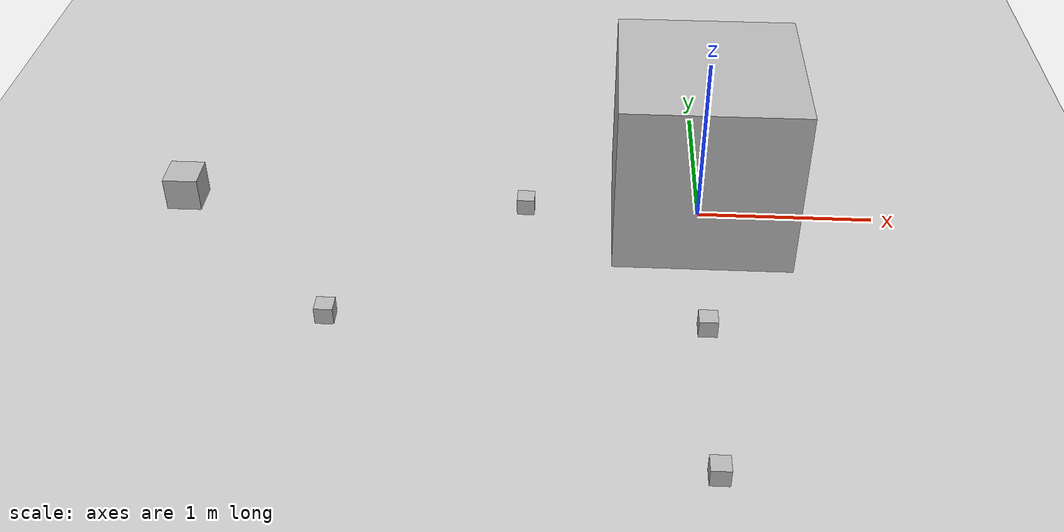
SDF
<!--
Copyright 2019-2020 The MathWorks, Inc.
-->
<sdf version="1.4">
 <world name="default">
  <include><uri>model://ground_plane</uri></include>
  <include><uri>model://sun</uri></include>
  <model name="unit_box">
   <pose>0.0 0.0 0.5 0.0 0.0 0.0</pose>
   <link name="link">
    <collision name="collision"><geometry><box><size>1 1 1</size></box></geometry></collision>
    <visual name="visual"><geometry><box><size>1 1 1</size></box></geometry></visual>
   </link>
   <joint type="revolute" name="joint">
    <child>link</child>
    <parent>link</parent>
    <axis><xyz>0 0 0</xyz></axis>
   </joint>
  </model>
  <model name="camera0">
   <pose>0 1 0.05 0 0 0</pose>
   <link name="link">
    <inertial>
     <mass>0.1</mass>
     <inertia><ixx>0.000166667</ixx><iyy>0.000166667</iyy><izz>0.000166667</izz></inertia>
    </inertial>
    <collision name="collision"><geometry><box><size>0.1 0.1 0.1</size></box></geometry></collision>
    <visual name="visual"><geometry><box><size>0.1 0.1 0.1</size></box></geometry></visual>
    <sensor name="camera" type="camera">
     <camera>
      <horizontal_fov>1.047</horizontal_fov>
      <image><width>320</width><height>240</height></image>
      <clip><near>0.1</near><far>100</far></clip>
     </camera>
     <always_on>1</always_on>
     <update_rate>200</update_rate>
     <visualize>true</visualize>
    </sensor>
   </link>
  </model>
  <model name="camera1">
   <pose>0 2 0.05 0 0 0</pose>
   <link name="link">
    <inertial>
     <mass>0.1</mass>
     <inertia><ixx>0.000166667</ixx><iyy>0.000166667</iyy><izz>0.000166667</izz></inertia>
    </inertial>
    <collision name="collision"><geometry><box><size>0.1 0.1 0.1</size></box></geometry></collision>
    <visual name="visual"><geometry><box><size>0.1 0.1 0.1</size></box></geometry></visual>
    <sensor name="camera" type="camera">
     <camera>
      <horizontal_fov>1.047</horizontal_fov>
      <image><width>320</width><height>240</height></image>
      <clip><near>0.1</near><far>100</far></clip>
     </camera>
     <always_on>1</always_on>
     <update_rate>200</update_rate>
     <visualize>true</visualize>
    </sensor>
   </link>
  </model>
  <model name="depth_camera0">
   <link name="link">
    <pose>0 -1 0.05 0 0 0</pose>
    <inertial>
     <mass>0.1</mass>
     <inertia><ixx>0.000166667</ixx><iyy>0.000166667</iyy><izz>0.000166667</izz></inertia>
    </inertial>
    <collision name="collision"><geometry><box><size>0.1 0.1 0.1</size></box></geometry></collision>
    <visual name="visual"><geometry><box><size>0.1 0.1 0.1</size></box></geometry></visual>
    <sensor name="camera" type="depth">
     <camera>
      <horizontal_fov>1.047</horizontal_fov>
      <image><width>320</width><height>240</height></image>
      <clip><near>0.1</near><far>100</far></clip>
     </camera>
     <always_on>1</always_on>
     <update_rate>200</update_rate>
     <visualize>true</visualize>
    </sensor>
   </link>
  </model>
  <model name="depth_camera1">
   <link name="link">
    <pose>0 -2 0.05 0 0 0</pose>
    <inertial>
     <mass>0.1</mass>
     <inertia><ixx>0.000166667</ixx><iyy>0.000166667</iyy><izz>0.000166667</izz></inertia>
    </inertial>
    <collision name="collision"><geometry><box><size>0.1 0.1 0.1</size></box></geometry></collision>
    <visual name="visual"><geometry><box><size>0.1 0.1 0.1</size></box></geometry></visual>
    <sensor name="camera" type="depth">
     <camera>
      <horizontal_fov>1.047</horizontal_fov>
      <image><width>320</width><height>240</height></image>
      <clip><near>0.1</near><far>100</far></clip>
     </camera>
     <always_on>1</always_on>
     <update_rate>200</update_rate>
     <visualize>true</visualize>
    </sensor>
   </link>
  </model>
  <model name="imu0">
   <link name="link">
    <pose>-2 -1 0.05 0 0 0</pose>
    <inertial><mass>0.1</mass></inertial>
    <visual name="visual"><geometry><box><size>0.1 0.1 0.1</size></box></geometry></visual>
    <collision name="collision"><geometry><box><size>0.1 0.1 0.1</size></box></geometry></collision>
    <sensor name="imu" type="imu">
     <imu>
      <angular_velocity>
       <x>
        <noise type="gaussian">
         <mean>0.0</mean>
         <stddev>2e-4</stddev>
         <bias_mean>0.0000075</bias_mean>
         <bias_stddev>0.0000008</bias_stddev>
        </noise>
       </x>
       <y>
        <noise type="gaussian">
         <mean>0.0</mean>
         <stddev>2e-4</stddev>
         <bias_mean>0.0000075</bias_mean>
         <bias_stddev>0.0000008</bias_stddev>
        </noise>
       </y>
       <z>
        <noise type="gaussian">
         <mean>0.0</mean>
         <stddev>2e-4</stddev>
         <bias_mean>0.0000075</bias_mean>
         <bias_stddev>0.0000008</bias_stddev>
        </noise>
       </z>
      </angular_velocity>
      <linear_acceleration>
       <x>
        <noise type="gaussian">
         <mean>0.0</mean>
         <stddev>1.7e-2</stddev>
         <bias_mean>0.1</bias_mean>
         <bias_stddev>0.001</bias_stddev>
        </noise>
       </x>
       <y>
        <noise type="gaussian">
         <mean>0.0</mean>
         <stddev>1.7e-2</stddev>
         <bias_mean>0.1</bias_mean>
         <bias_stddev>0.001</bias_stddev>
        </noise>
       </y>
       <z>
        <noise type="gaussian">
         <mean>0.0</mean>
         <stddev>1.7e-2</stddev>
         <bias_mean>0.1</bias_mean>
         <bias_stddev>0.001</bias_stddev>
        </noise>
       </z>
      </linear_acceleration>
     </imu>
     <always_on>1</always_on>
     <update_rate>200</update_rate>
    </sensor>
   </link>
  </model>
  <model name="imu1">
   <link name="link">
    <pose>-1 0 0.05 0 0 0</pose>
    <inertial><mass>0.1</mass></inertial>
    <visual name="visual"><geometry><box><size>0.1 0.1 0.1</size></box></geometry></visual>
    <collision name="collision"><geometry><box><size>0.1 0.1 0.1</size></box></geometry></collision>
    <sensor name="imu" type="imu">
     <imu>
      <angular_velocity>
       <x>
        <noise type="gaussian">
         <mean>0.0</mean>
         <stddev>2e-4</stddev>
         <bias_mean>0.0000075</bias_mean>
         <bias_stddev>0.0000008</bias_stddev>
        </noise>
       </x>
       <y>
        <noise type="gaussian">
         <mean>0.0</mean>
         <stddev>2e-4</stddev>
         <bias_mean>0.0000075</bias_mean>
         <bias_stddev>0.0000008</bias_stddev>
        </noise>
       </y>
       <z>
        <noise type="gaussian">
         <mean>0.0</mean>
         <stddev>2e-4</stddev>
         <bias_mean>0.0000075</bias_mean>
         <bias_stddev>0.0000008</bias_stddev>
        </noise>
       </z>
      </angular_velocity>
      <linear_acceleration>
       <x>
        <noise type="gaussian">
         <mean>0.0</mean>
         <stddev>1.7e-2</stddev>
         <bias_mean>0.1</bias_mean>
         <bias_stddev>0.001</bias_stddev>
        </noise>
       </x>
       <y>
        <noise type="gaussian">
         <mean>0.0</mean>
         <stddev>1.7e-2</stddev>
         <bias_mean>0.1</bias_mean>
         <bias_stddev>0.001</bias_stddev>
        </noise>
       </y>
       <z>
        <noise type="gaussian">
         <mean>0.0</mean>
         <stddev>1.7e-2</stddev>
         <bias_mean>0.1</bias_mean>
         <bias_stddev>0.001</bias_stddev>
        </noise>
       </z>
      </linear_acceleration>
     </imu>
     <always_on>1</always_on>
     <update_rate>200</update_rate>
    </sensor>
   </link>
  </model>
  <model name="velodyne">
   <pose>-3 0 0.1 0 0 0</pose>
   <link name="link">
    <inertial><mass>0.1</mass></inertial>
    <collision name="collision"><geometry><box><size>0.2 0.2 0.2</size></box></geometry></collision>
    <visual name="visual"><geometry><box><size>0.2 0.2 0.2</size></box></geometry></visual>
    <sensor name="laser" type="ray">
     <pose>0.01 0 0.0175 0 -0 0</pose>
     <ray>
      <scan>
       <horizontal>
        <samples>640</samples>
        <resolution>1</resolution>
        <min_angle>-2.26889</min_angle>
        <max_angle>2.268899</max_angle>
       </horizontal>
       <vertical>
        <samples>32</samples>
        <resolution>1</resolution>
        <min_angle>-0.535</min_angle>
        <max_angle>0.186132</max_angle>
       </vertical>
      </scan>
      <range><min>0.1</min><max>10</max><resolution>0.01</resolution></range>
     </ray>
     <always_on>1</always_on>
     <update_rate>200</update_rate>
     <visualize>true</visualize>
    </sensor>
   </link>
  </model>
  <plugin name="GazeboPlugin" filename="lib/libGazeboCoSimPlugin.so"><portNumber>14581</portNumber></plugin>
 </world>
</sdf>
